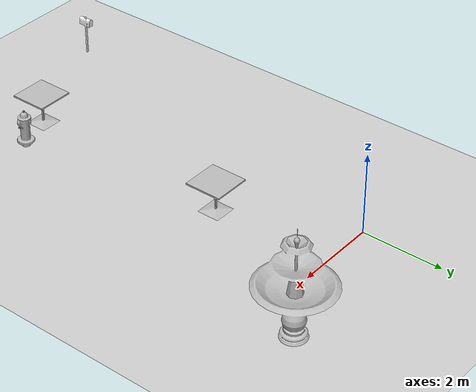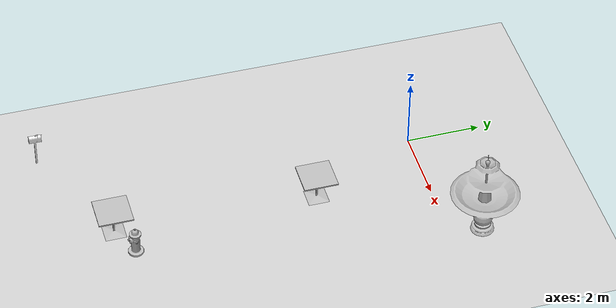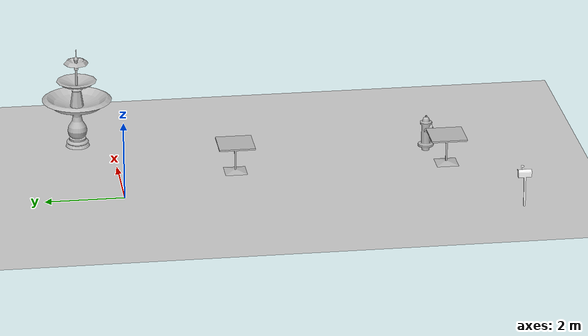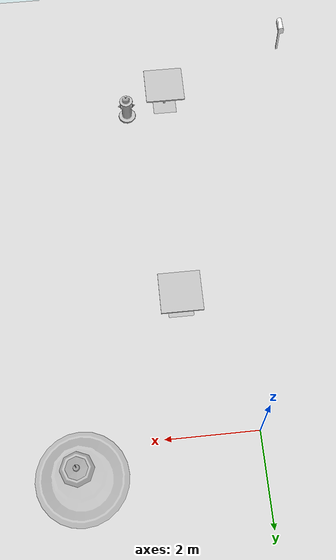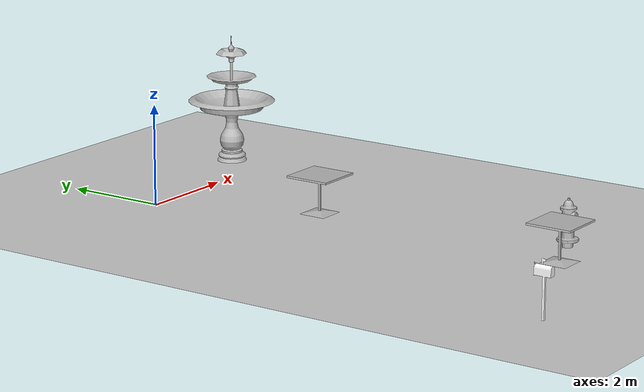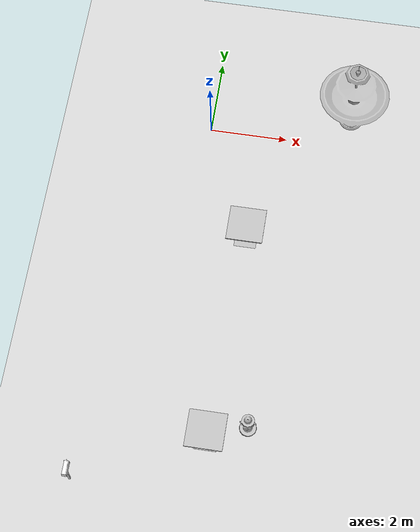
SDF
<sdf version="1.6">
 <world name="default">
  <light name="sun" type="directional">
   <pose>0 0 15 0 -0 0</pose>
   <diffuse>1 1 1 1</diffuse>
   <specular>0.1 0.1 0.1 1</specular>
   <attenuation>
    <range>1000</range>
    <constant>0.9</constant>
    <linear>0.01</linear>
    <quadratic>0.001</quadratic>
   </attenuation>
   <direction>-0.5 0.5 -1</direction>
  </light>
  <model name="ground_plane">
   <static>1</static>
   <link name="link">
    <collision name="collision">
     <geometry><plane><normal>0 0 1</normal><size>100 100</size></plane></geometry>
     <surface><friction><ode><mu>100</mu><mu2>50</mu2></ode></friction></surface>
    </collision>
    <visual name="visual">
     <transparency>1</transparency>
     <cast_shadows>0</cast_shadows>
     <geometry><plane><normal>0 0 1</normal><size>100 100</size></plane></geometry>
     <material>
      <script><uri>file://media/materials/scripts/gazebo.material</uri><name>Gazebo/Grey</name></script>
     </material>
    </visual>
   </link>
  </model>
  <gravity>0 0 -9.8</gravity>
  <magnetic_field>6e-06 2.3e-05 -4.2e-05</magnetic_field>
  <atmosphere type="adiabatic"/>
  <physics name="default_physics" default="0" type="ode">
   <max_step_size>0.001</max_step_size>
   <real_time_factor>1</real_time_factor>
   <real_time_update_rate>1000</real_time_update_rate>
  </physics>
  <scene><ambient>0.4 0.4 0.4 1</ambient><background>0.7 0.7 0.7 1</background><shadows>1</shadows></scene>
  <spherical_coordinates>
   <surface_model>EARTH_WGS84</surface_model>
   <latitude_deg>0</latitude_deg>
   <longitude_deg>0</longitude_deg>
   <elevation>0</elevation>
   <heading_deg>0</heading_deg>
  </spherical_coordinates>
  <model name="cafe_table">
   <static>1</static>
   <link name="link">
    <collision name="surface">
     <pose>0 0 0.755 0 -0 0</pose>
     <geometry><box><size>0.913 0.913 0.04</size></box></geometry>
    </collision>
    <collision name="column">
     <pose>0 0 0.37 0 -0 0</pose>
     <geometry><box><size>0.042 0.042 0.74</size></box></geometry>
    </collision>
    <collision name="base">
     <pose>0 0 0.02 0 -0 0</pose>
     <geometry><box><size>0.56 0.56 0.04</size></box></geometry>
    </collision>
    <visual name="visual">
     <geometry><mesh><uri>model://cafe_table/meshes/cafe_table.dae</uri><scale>1 1 1</scale></mesh></geometry>
    </visual>
   </link>
   <pose>1.3653 -2.95315 0 0 -0 0</pose>
  </model>
  <model name="cafe_table_0">
   <static>1</static>
   <link name="link">
    <collision name="surface">
     <pose>0 0 0.755 0 -0 0</pose>
     <geometry><box><size>0.913 0.913 0.04</size></box></geometry>
    </collision>
    <collision name="column">
     <pose>0 0 0.37 0 -0 0</pose>
     <geometry><box><size>0.042 0.042 0.74</size></box></geometry>
    </collision>
    <collision name="base">
     <pose>0 0 0.02 0 -0 0</pose>
     <geometry><box><size>0.56 0.56 0.04</size></box></geometry>
    </collision>
    <visual name="visual">
     <geometry><mesh><uri>model://cafe_table/meshes/cafe_table.dae</uri><scale>1 1 1</scale></mesh></geometry>
    </visual>
   </link>
   <pose>1.21013 -8.35217 0 0 -0 0</pose>
  </model>
  <model name="Mailbox">
   <link name="link">
    <collision name="collision">
     <geometry><mesh><uri>model://mailbox/meshes/mailbox.dae</uri><scale>1 1 1</scale></mesh></geometry>
    </collision>
    <visual name="visual">
     <geometry><mesh><uri>model://mailbox/meshes/mailbox.dae</uri><scale>1 1 1</scale></mesh></geometry>
     <material>
      <script>
       <uri>model://mailbox/materials/scripts</uri>
       <uri>model://mailbox/materials/textures</uri>
       <name>Mailbox/Diffuse</name>
      </script>
     </material>
    </visual>
    <inertial>
     <inertia><ixx>1</ixx><ixy>0</ixy><ixz>0</ixz><iyy>1</iyy><iyz>0</iyz><izz>1</izz></inertia>
     <mass>1</mass>
    </inertial>
   </link>
   <pose>-1.82892 -9.77725 -9e-06 1e-06 -4e-06 0</pose>
  </model>
  <model name="fire_hydrant">
   <static>1</static>
   <link name="link">
    <collision name="collision">
     <geometry><mesh><uri>model://fire_hydrant/meshes/fire_hydrant.dae</uri><scale>1 1 1</scale></mesh></geometry>
    </collision>
    <visual name="visual">
     <geometry><mesh><uri>model://fire_hydrant/meshes/fire_hydrant.dae</uri><scale>1 1 1</scale></mesh></geometry>
    </visual>
   </link>
   <pose>2.15533 -7.98053 0 0 -0 0</pose>
  </model>
  <model name="fountain">
   <static>1</static>
   <link name="link">
    <collision name="collision">
     <geometry><mesh><uri>model://fountain/meshes/fountain.dae</uri><scale>1 1 1</scale></mesh></geometry>
    </collision>
    <visual name="visual">
     <geometry><mesh><uri>model://fountain/meshes/fountain.dae</uri><scale>1 1 1</scale></mesh></geometry>
    </visual>
   </link>
   <pose>3.62011 0.858209 0 0 -0 0</pose>
  </model>
 </world>
</sdf>
